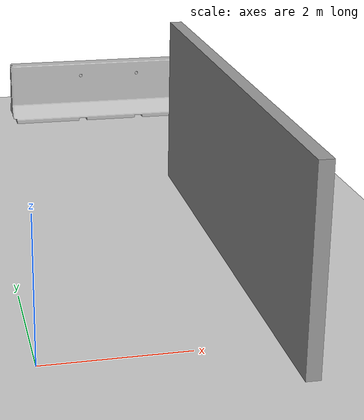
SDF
<sdf version="1.6">
 <world name="vrc_task_1">
  <scene>
   <ambient>0.4 0.4 0.4 1</ambient>
   <background>0.7 0.7 0.7 1</background>
   <shadows>1</shadows>
   <sky><clouds><speed>1</speed></clouds></sky>
  </scene>
  <physics name="default_physics" default="0" type="ode">
   <ode>
    <solver>
     <type>quick</type>
     <iters>10</iters>
     <sor>1</sor>
     <use_dynamic_moi_rescaling>0</use_dynamic_moi_rescaling>
    </solver>
    <constraints>
     <cfm>0</cfm>
     <erp>0.2</erp>
     <contact_max_correcting_vel>100</contact_max_correcting_vel>
     <contact_surface_layer>0.001</contact_surface_layer>
    </constraints>
   </ode>
   <max_step_size>0.004</max_step_size>
   <real_time_factor>1</real_time_factor>
   <real_time_update_rate>250</real_time_update_rate>
  </physics>
  <light name="sun" type="directional">
   <pose>0 0 10 0 -0 0</pose>
   <diffuse>0.8 0.8 0.8 1</diffuse>
   <specular>0.2 0.2 0.2 1</specular>
   <attenuation>
    <range>1000</range>
    <constant>0.9</constant>
    <linear>0.01</linear>
    <quadratic>0.001</quadratic>
   </attenuation>
   <direction>-0.5 0.1 -0.9</direction>
  </light>
  <model name="ground_plane">
   <static>1</static>
   <link name="link">
    <collision name="collision">
     <geometry><plane><normal>0 0 1</normal><size>100 100</size></plane></geometry>
     <surface><friction><ode><mu>100</mu><mu2>50</mu2></ode></friction></surface>
    </collision>
    <visual name="visual">
     <cast_shadows>0</cast_shadows>
     <geometry><plane><normal>0 0 1</normal><size>100 100</size></plane></geometry>
     <material>
      <script><uri>file://media/materials/scripts/gazebo.material</uri><name>Gazebo/Grey</name></script>
     </material>
    </visual>
   </link>
  </model>
  <gravity>0 0 -9.8066</gravity>
  <magnetic_field>6e-06 2.3e-05 -4.2e-05</magnetic_field>
  <atmosphere type="adiabatic"/>
  <spherical_coordinates>
   <surface_model>EARTH_WGS84</surface_model>
   <latitude_deg>0</latitude_deg>
   <longitude_deg>0</longitude_deg>
   <elevation>0</elevation>
   <heading_deg>0</heading_deg>
  </spherical_coordinates>
  <model name="jersey_barrier">
   <static>1</static>
   <link name="link">
    <visual name="visual">
     <geometry><mesh><uri>model://jersey_barrier/meshes/jersey_barrier.dae</uri></mesh></geometry>
    </visual>
    <collision name="upright">
     <pose>0 0 0.5715 0 -0 0</pose>
     <geometry><box><size>4.06542 0.3063 1.143</size></box></geometry>
    </collision>
    <collision name="base">
     <pose>0 0 0.032258 0 -0 0</pose>
     <geometry><box><size>4.06542 0.8107 0.064516</size></box></geometry>
    </collision>
    <collision name="base2">
     <pose>0 0 0.1 0 -0 0</pose>
     <geometry><box><size>4.06542 0.65 0.1</size></box></geometry>
    </collision>
    <collision name="base3">
     <pose>0 0 0.2 0 -0 0</pose>
     <geometry><box><size>4.06542 0.5 0.1</size></box></geometry>
    </collision>
    <collision name="left-angle">
     <pose>0 -0.224 0.2401 0.9 -0 0</pose>
     <geometry><box><size>4.06542 0.5 0.064516</size></box></geometry>
    </collision>
    <collision name="right-angle">
     <pose>0 0.224 0.2401 -0.9 0 0</pose>
     <geometry><box><size>4.06542 0.5 0.064516</size></box></geometry>
    </collision>
   </link>
   <pose>2.81355 10.6027 0 0 -0 0</pose>
  </model>
  <model name="grey_wall">
   <static>1</static>
   <link name="link">
    <pose>0 0 1.4 0 -0 0</pose>
    <collision name="collision"><geometry><box><size>7.5 0.2 2.8</size></box></geometry></collision>
    <visual name="visual">
     <cast_shadows>0</cast_shadows>
     <geometry><box><size>7.5 0.2 2.8</size></box></geometry>
     <material>
      <script>
       <uri>model://grey_wall/materials/scripts</uri>
       <uri>model://grey_wall/materials/textures</uri>
       <name>vrc/grey_wall</name>
      </script>
     </material>
    </visual>
   </link>
   <pose>3.24697 2.74805 0 0 -0 1.56143</pose>
  </model>
 </world>
</sdf>
